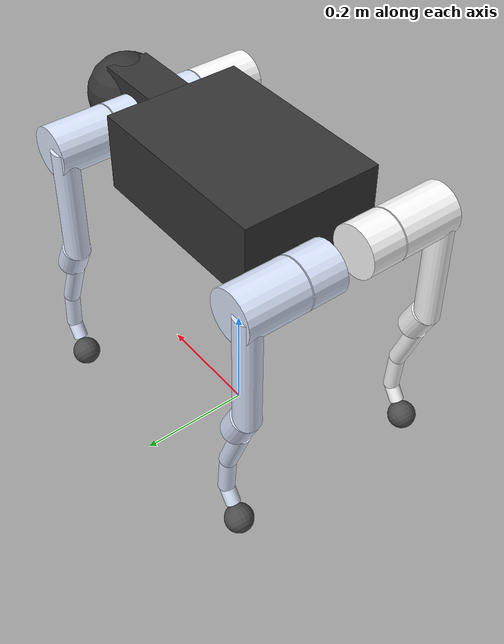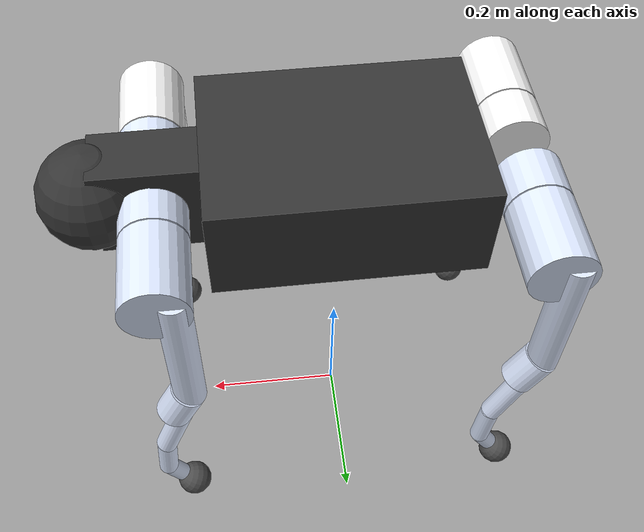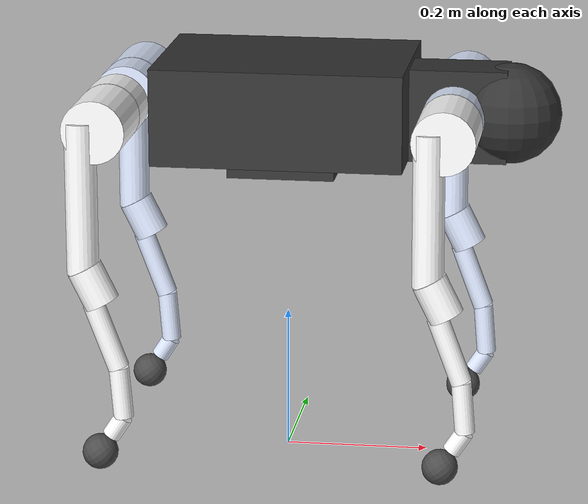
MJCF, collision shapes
<mujoco model="boying">
  <compiler angle="radian" meshdir="assets" autolimits="true" />

  <default>
    <default class="boying">
      <geom friction="0.4" margin="0.001" condim="1"/>
      <joint axis="0 1 0" damping="0.1" armature="0.01" frictionloss="1.6"/>
      <default class="abduction">
        <joint axis="1 0 0" range="-0.69813 0.69813"/>
      </default>
      <default class="hip">
        <joint range="-0.175 4.712"/>
      </default>
      <default class="knee">
        <joint range="-2.7478 -0.9269"/>
      </default>
      <default class="visual">
        <geom type="mesh" contype="0" conaffinity="0" group="2"/>
      </default>
      <default class="collision">
        <geom group="3"/>
      </default>
    </default>
  </default>

  <asset>
    <mesh name="base"    content_type="model/stl" file="base.STL"/>
    <mesh name="head"    content_type="model/stl" file="head.STL"/>
    <mesh name="FL_hip"  content_type="model/stl" file="FL_hip.STL"/>
    <mesh name="L_thigh" content_type="model/stl" file="L_thigh.STL"/>
    <mesh name="L_calf"  content_type="model/stl" file="L_calf.STL"/>
    <mesh name="L_foot"  content_type="model/stl" file="L_foot.STL"/>
    <mesh name="FR_hip"  content_type="model/stl" file="FR_hip.STL"/>
    <mesh name="R_thigh" content_type="model/stl" file="R_thigh.STL"/>
    <mesh name="R_calf"  content_type="model/stl" file="R_calf.STL"/>
    <mesh name="R_foot"  content_type="model/stl" file="R_foot.STL"/>
    <mesh name="RL_hip"  content_type="model/stl" file="RL_hip.STL"/>
    <mesh name="RR_hip"  content_type="model/stl" file="RR_hip.STL"/>
  </asset>

  <worldbody>
    <body name="base" pos="0 0 0.50" childclass="boying">
      <inertial pos="0.0334842 0.00147378 -0.0107392"
                quat="-0.00245763 0.699039 -0.00181381 0.715077"
                mass="8.98346"
                diaginertia="0.176459 0.170398 0.0471226"/>
      <joint name="floating_to_word" type="free"/>
      <!-- visual -->
      <geom class="visual" rgba="0.203922 0.203922 0.203922 1" mesh="base"/>
      <geom class="visual" rgba="0.203922 0.203922 0.203922 1" mesh="head"/>
      <!-- base torso collision -->
      <geom name="base1_collision" class="collision" size="0.175 0.123 0.068" pos="0 0 0.005"    type="box"    rgba="0.203922 0.203922 0.203922 1"/>
      <geom name="base2_collision" class="collision" size="0.075 0.075 0.0125" pos="0 0 -0.0755" type="box"    rgba="0.203922 0.203922 0.203922 1"/>
      <!-- head collision -->
      <geom name="head1_collision" class="collision" size="0.071 0.039 0.065" pos="0.24 0 0"     type="box"    rgba="0.203922 0.203922 0.203922 1"/>
      <geom name="head2_collision" class="collision" size="0.07"              pos="0.315 0 0"                  rgba="0.203922 0.203922 0.203922 1"/>
      <site name="imu" pos="0 0 0" group="5"/>

      <!-- ===== FL leg ===== -->
      <body name="FL_hip" pos="0.23795 0.055027 0">
        <inertial pos="-0.0071 0.000505 0" quat="0.503772 0.503772 0.496199 0.496199" mass="0.832922" diaginertia="0.00100309 0.000871 0.000606909"/>
        <joint name="FL_hip_joint" pos="0 0 0" axis="1 0 0" range="-0.681 0.681"/>
        <geom class="visual" rgba="0.86667 0.9098 1 1" mesh="FL_hip"/>
        <geom name="FL_hip_collision" class="collision" size="0.044 0.031" quat="0.707107 0.707107 0 0" type="cylinder" rgba="0.86667 0.9098 1 1"/>
        <body name="FL_thigh">
          <inertial pos="-0.003487 0.099349 -0.042506" quat="0.992842 0.112211 0.027623 0.0301661" mass="1.50976" diaginertia="0.0100085 0.00958144 0.0015191"/>
          <joint name="FL_thigh_joint" pos="0 0 0" axis="0 1 0" range="-0.175 4.712"/>
          <geom class="visual" rgba="0.86667 0.9098 1 1" mesh="L_thigh"/>
          <geom name="FL_thigh1_collision" class="collision" size="0.044 0.0545"   pos="0 0.0875 0"              quat="0.707107 0.707107 0 0"      type="cylinder" rgba="0.86667 0.9098 1 1"/>
          <geom name="FL_thigh2_collision" class="collision" size="0.022 0.106574" pos="-0.020000 0.127000 -0.095650"                                   type="cylinder" rgba="0.86667 0.9098 1 1"/>
          <geom name="FL_thigh3_collision" class="collision" size="0.025 0.0275"   pos="-0.006 0.127 -0.219"  quat="0.973894 0 -0.227004 0"             type="cylinder" rgba="0.86667 0.9098 1 1"/>
          <body name="FL_calf" pos="0 0.1267 -0.235" quat="0.894493 0 0.447082 0">
            <inertial pos="0.101823 6.31718e-05 -0.0647394" quat="0.320902 0.630731 0.628578 0.32263" mass="0.190862" diaginertia="0.00164183 0.00160675 5.20806e-05"/>
            <joint name="FL_calf_joint" pos="0 0 0" axis="0 1 0" range="-2.7478 -0.9269"/>
            <geom class="visual" rgba="0.86667 0.9098 1 1" mesh="L_calf"/>
            <geom class="visual" rgba="0.29804 0.29804 0.29804 1" mesh="L_foot"/>
            <geom name="FL_calf1_collision" class="collision" size="0.015 0.048837"  pos="0.050640 0 -0.025016" quat="0.598872 0 0.800845 0"   type="cylinder" rgba="0.86667 0.9098 1 1"/>
            <geom name="FL_calf2_collision" class="collision" size="0.014 0.036148"  pos="0.128041 0 -0.058136" quat="0.482546 0 0.875871 0"   type="cylinder" rgba="0.86667 0.9098 1 1"/>
            <geom name="FL_calf3_collision" class="collision" size="0.013 0.016670"   pos="0.164320 0 -0.093106" quat="0.174336 0 0.984686 0"    type="cylinder" rgba="0.86667 0.9098 1 1"/>
            <geom name="FL_foot_collision"  class="collision" size="0.025"        pos="0.18 0 -0.136"    rgba="0.29804 0.29804 0.29804 1" priority="1" condim="6" friction="0.6 0.02 0.01"/>
            <site name="FL" pos="0.18 0 -0.136" type="sphere" size="0.025" group="5"/>
          </body>
        </body>
      </body>

      <!-- ===== FR leg ===== -->
      <body name="FR_hip" pos="0.23795 -0.054973 0">
        <inertial pos="-0.0071 -0.000505 0" quat="0.496199 0.496199 0.503772 0.503772" mass="0.832922" diaginertia="0.00100309 0.000871 0.000606909"/>
        <joint name="FR_hip_joint" pos="0 0 0" axis="1 0 0" range="-0.681 0.681"/>
        <geom class="visual" rgba="0.86667 0.9098 1 1" mesh="FR_hip"/>
        <geom name="FR_hip_collision" class="collision" size="0.044 0.031" quat="0.707107 0.707107 0 0" type="cylinder" rgba="0.86667 0.9098 1 1"/>
        <body name="FR_thigh">
          <inertial pos="-0.003876 -0.099428 -0.043098" quat="0.992467 -0.111413 0.029126 -0.041808" mass="1.518179" diaginertia="0.010166 0.009743 0.001533"/>
          <joint name="FR_thigh_joint" pos="0 0 0" axis="0 1 0" range="-0.175 4.712"/>
          <geom class="visual" rgba="1 1 1 1" mesh="R_thigh"/>
          <geom name="FR_thigh1_collision" class="collision" size="0.044 0.0545"   pos="0 -0.0875 0"             quat="0.707107 0.707107 0 0"      type="cylinder" rgba="1 1 1 1"/>
          <geom name="FR_thigh2_collision" class="collision" size="0.022 0.106574" pos="-0.020000 -0.127000 -0.095650"                                  type="cylinder" rgba="1 1 1 1"/>
          <geom name="FR_thigh3_collision" class="collision" size="0.025 0.0275"   pos="-0.006 -0.127 -0.219" quat="0.973894 0 -0.227004 0"             type="cylinder" rgba="1 1 1 1"/>
          <body name="FR_calf" pos="0 -0.1267 -0.235" quat="0.894493 0 0.447082 0">
            <inertial pos="0.126802 -0.00011595 -0.0871932" quat="0.312639 0.63358 0.635832 0.310726" mass="0.103987" diaginertia="0.000865132 0.000849365 2.87672e-05"/>
            <joint name="FR_calf_joint" pos="0 0 0" axis="0 1 0" range="-2.7478 -0.9269"/>
            <geom class="visual" rgba="1 1 1 1" mesh="R_calf"/>
            <geom class="visual" rgba="0.29804 0.29804 0.29804 1" mesh="R_foot"/>
            <geom name="FR_calf1_collision" class="collision" size="0.015 0.048837"  pos="0.050640 0 -0.025016" quat="0.598872 0 0.800845 0"   type="cylinder" rgba="1 1 1 1"/>
            <geom name="FR_calf2_collision" class="collision" size="0.014 0.036148"  pos="0.128041 0 -0.058136" quat="0.482546 0 0.875871 0"   type="cylinder" rgba="1 1 1 1"/>
            <geom name="FR_calf3_collision" class="collision" size="0.013 0.016670"   pos="0.164320 0 -0.093106" quat="0.174336 0 0.984686 0"    type="cylinder" rgba="1 1 1 1"/>
            <geom name="FR_foot_collision"  class="collision" size="0.025"        pos="0.18 0 -0.136"    rgba="0.29804 0.29804 0.29804 1" priority="1" condim="6" friction="0.6 0.02 0.01"/>
            <site name="FR" pos="0.18 0 -0.136" type="sphere" size="0.025" group="5"/>
          </body>
        </body>
      </body>

      <!-- ===== RL leg ===== -->
      <body name="RL_hip" pos="-0.23805 0.055027 0">
        <inertial pos="0.0071 0.000505 0" quat="0.496199 0.496199 0.503772 0.503772" mass="0.832922" diaginertia="0.00100309 0.000871 0.000606909"/>
        <joint name="RL_hip_joint" pos="0 0 0" axis="1 0 0" range="-0.681 0.681"/>
        <geom class="visual" rgba="0.866667 0.909804 1 1" mesh="RL_hip"/>
        <geom name="RL_hip_collision" class="collision" size="0.044 0.031" quat="0.707107 0.707107 0 0" type="cylinder" rgba="0.866667 0.909804 1 1"/>
        <body name="RL_thigh">
          <inertial pos="-0.003849 0.099349 -0.04284" quat="0.992376 0.112118 0.0290042 0.0421632" mass="1.50976" diaginertia="0.010087 0.00966369 0.00152633"/>
          <joint name="RL_thigh_joint" pos="0 0 0" axis="0 1 0" range="-0.175 4.712"/>
          <geom class="visual" rgba="0.86667 0.9098 1 1" mesh="L_thigh"/>
          <geom name="RL_thigh1_collision" class="collision" size="0.044 0.0545"   pos="0 0.0875 0"              quat="0.707107 0.707107 0 0"      type="cylinder" rgba="0.86667 0.9098 1 1"/>
          <geom name="RL_thigh2_collision" class="collision" size="0.022 0.106574" pos="-0.020000 0.127000 -0.095650"                                   type="cylinder" rgba="0.86667 0.9098 1 1"/>
          <geom name="RL_thigh3_collision" class="collision" size="0.025 0.0275"   pos="-0.006 0.127 -0.219"  quat="0.973894 0 -0.227004 0"             type="cylinder" rgba="0.86667 0.9098 1 1"/>
          <body name="RL_calf" pos="0 0.1267 -0.235" quat="0.894493 0 0.447082 0">
            <inertial pos="0.101823 6.31718e-05 -0.0647394" quat="0.320902 0.630731 0.628578 0.32263" mass="0.190862" diaginertia="0.00164183 0.00160675 5.20806e-05"/>
            <joint name="RL_calf_joint" pos="0 0 0" axis="0 1 0" range="-2.7478 -0.9269"/>
            <geom class="visual" rgba="0.86667 0.9098 1 1" mesh="L_calf"/>
            <geom class="visual" rgba="0.29804 0.29804 0.29804 1" mesh="L_foot"/>
            <geom name="RL_calf1_collision" class="collision" size="0.015 0.048837"  pos="0.050640 0 -0.025016" quat="0.598872 0 0.800845 0"   type="cylinder" rgba="0.86667 0.9098 1 1"/>
            <geom name="RL_calf2_collision" class="collision" size="0.014 0.036148"  pos="0.128041 0 -0.058136" quat="0.482546 0 0.875871 0"   type="cylinder" rgba="0.86667 0.9098 1 1"/>
            <geom name="RL_calf3_collision" class="collision" size="0.013 0.016670"   pos="0.164320 0 -0.093106" quat="0.174336 0 0.984686 0"    type="cylinder" rgba="0.86667 0.9098 1 1"/>
            <geom name="RL_foot_collision"  class="collision" size="0.025"        pos="0.18 0 -0.136"    rgba="0.29804 0.29804 0.29804 1" priority="1" condim="6" friction="0.6 0.02 0.01"/>
            <site name="RL" pos="0.18 0 -0.136" type="sphere" size="0.025" group="5"/>
          </body>
        </body>
      </body>

      <!-- ===== RR leg ===== -->
      <body name="RR_hip" pos="-0.23805 -0.054973 0">
        <inertial pos="0.0071 -0.000505 0" quat="0.503772 0.503772 0.496199 0.496199" mass="0.832922" diaginertia="0.00100309 0.000871 0.000606909"/>
        <joint name="RR_hip_joint" pos="0 0 0" axis="1 0 0" range="-0.681 0.681"/>
        <geom class="visual" rgba="1 1 1 1" mesh="RR_hip"/>
        <geom name="RR_hip_collision" class="collision" size="0.044 0.031" quat="0.707107 0.707107 0 0" type="cylinder" rgba="1 1 1 1"/>
        <body name="RR_thigh">
          <inertial pos="-0.003876 -0.099428 -0.043098" quat="0.992467 -0.111413 0.029126 -0.041808" mass="1.518179" diaginertia="0.010166 0.009743 0.001533"/>
          <joint name="RR_thigh_joint" pos="0 0 0" axis="0 1 0" range="-0.175 4.712"/>
          <geom class="visual" rgba="1 1 1 1" mesh="R_thigh"/>
          <geom name="RR_thigh1_collision" class="collision" size="0.044 0.0545"   pos="0 -0.0875 0"             quat="0.707107 0.707107 0 0"      type="cylinder" rgba="1 1 1 1"/>
          <geom name="RR_thigh2_collision" class="collision" size="0.022 0.106574" pos="-0.020000 -0.127000 -0.095650"                                  type="cylinder" rgba="1 1 1 1"/>
          <geom name="RR_thigh3_collision" class="collision" size="0.025 0.0275"   pos="-0.006 -0.127 -0.219" quat="0.973894 0 -0.227004 0"             type="cylinder" rgba="1 1 1 1"/>
          <body name="RR_calf" pos="0 -0.1267 -0.235" quat="0.894493 0 0.447082 0">
            <inertial pos="0.126802 -0.00011595 -0.0871932" quat="0.312639 0.63358 0.635832 0.310726" mass="0.103987" diaginertia="0.000865132 0.000849365 2.87672e-05"/>
            <joint name="RR_calf_joint" pos="0 0 0" axis="0 1 0" range="-2.7478 -0.9269"/>
            <geom class="visual" rgba="1 1 1 1" mesh="R_calf"/>
            <geom class="visual" rgba="0.29804 0.29804 0.29804 1" mesh="R_foot"/>
            <geom name="RR_calf1_collision" class="collision" size="0.015 0.048837"  pos="0.050640 0 -0.025016" quat="0.598872 0 0.800845 0"   type="cylinder" rgba="1 1 1 1"/>
            <geom name="RR_calf2_collision" class="collision" size="0.014 0.036148"  pos="0.128041 0 -0.058136" quat="0.482546 0 0.875871 0"   type="cylinder" rgba="1 1 1 1"/>
            <geom name="RR_calf3_collision" class="collision" size="0.013 0.016670"   pos="0.164320 0 -0.093106" quat="0.174336 0 0.984686 0"    type="cylinder" rgba="1 1 1 1"/>
            <geom name="RR_foot_collision"  class="collision" size="0.025"        pos="0.18 0 -0.136"    rgba="0.29804 0.29804 0.29804 1" priority="1" condim="6" friction="0.6 0.02 0.01"/>
            <site name="RR" pos="0.18 0 -0.136" type="sphere" size="0.025" group="5"/>
          </body>
        </body>
      </body>

    </body>
  </worldbody>

  <sensor>
    <gyro          name="imu_ang_vel"  site="imu"/>
    <velocimeter   name="imu_lin_vel"  site="imu"/>
    <accelerometer name="imu_lin_acc"  site="imu"/>
    <subtreeangmom name="root_angmom"  body="base"/>
  </sensor>

  <keyframe>
    <key name="home"
         qpos="0 0 0.27 1 0 0 0  0 0.7 -1.7  0 0.7 -1.7  0 0.7 -1.7  0 0.7 -1.7"
         ctrl="0 0.7 -1.7  0 0.7 -1.7  0 0.7 -1.7  0 0.7 -1.7"/>
  </keyframe>

</mujoco>
